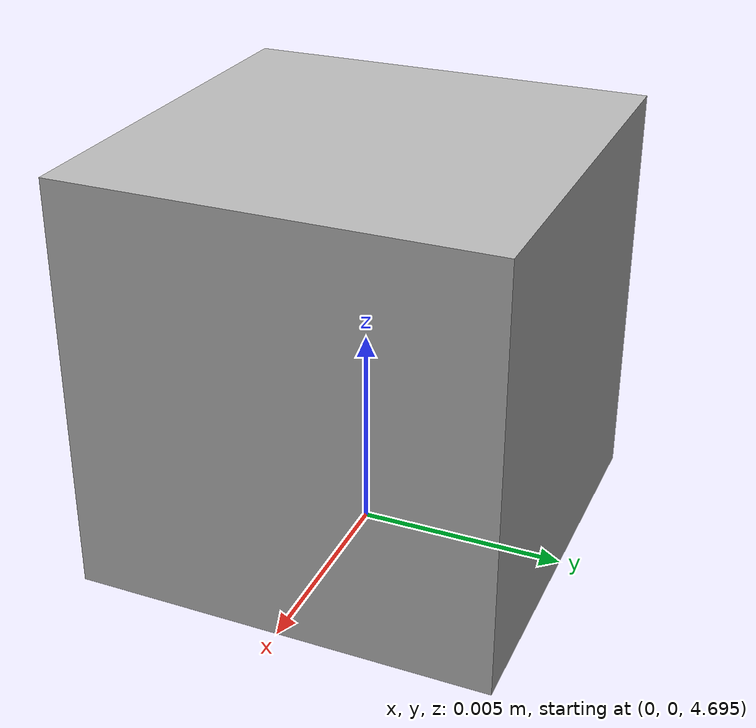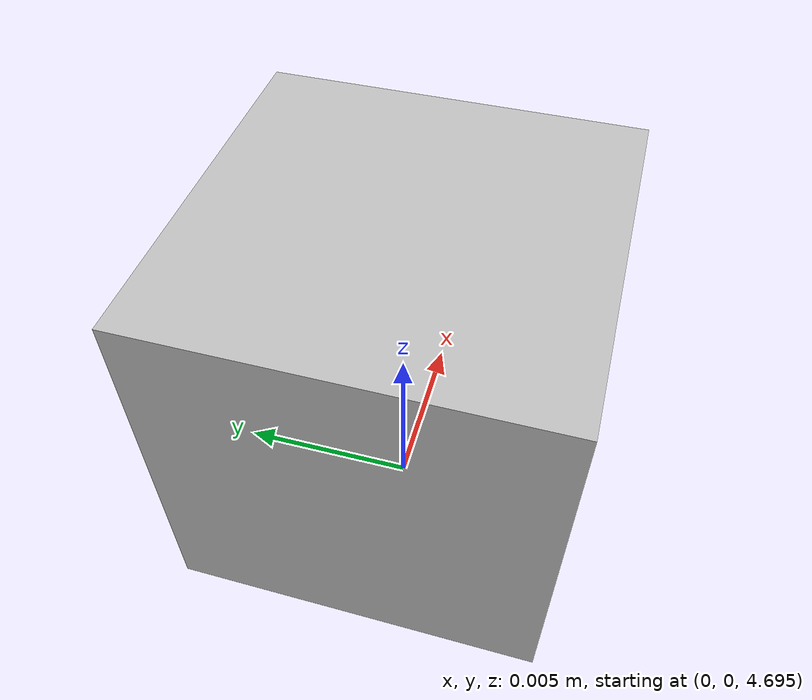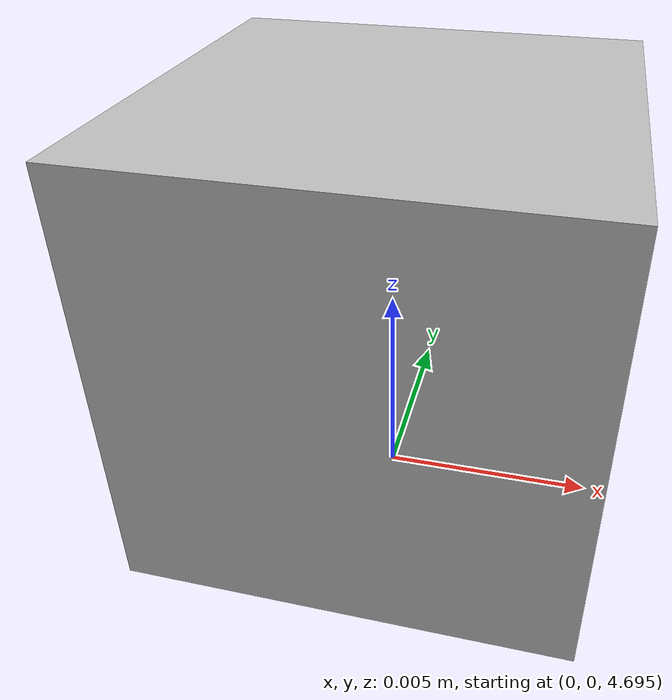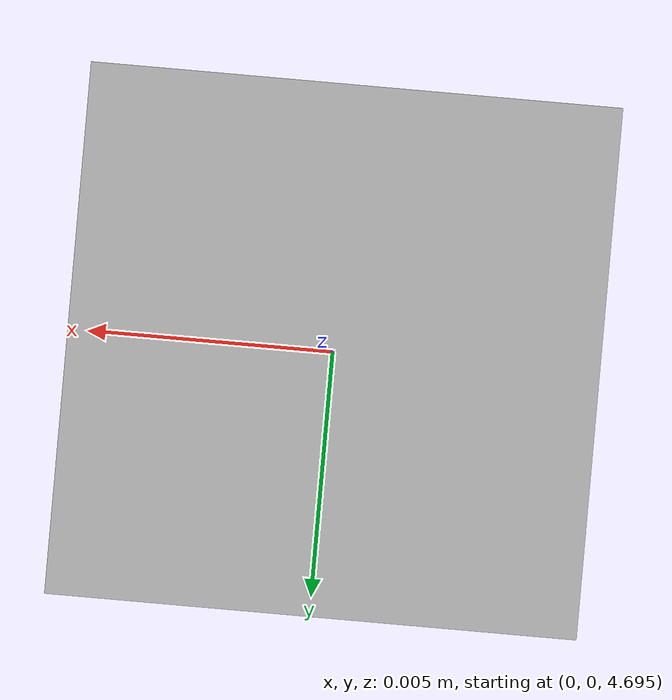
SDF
<?xml version="1.0" ?>
<sdf version="1.5">
	<world name="default">
		<include>
			<uri>model://sun</uri>
		</include>
		<include>
			<uri>model://ground_plane</uri>
		</include>
		<include>
			<uri>model://my1stmodel</uri>
			<pose>0 0 0.1 0 0 0</pose>
			<static>true</static>
		</include>
		<!-- camera -->
		<model name="camera">
			<pose>0 0 4.7 0 1.57 1.57</pose>  <!-- camera placed at a heigth of 15 feet-->
			<static>1</static>
			<link name='camera_link'>

				<inertial>
					<mass>0.1</mass>
					<inertia>
						<ixx>1</ixx>
						<ixy>0</ixy>
						<ixz>0</ixz>
						<iyy>1</iyy>
						<iyz>0</iyz>
						<izz>1</izz>
					</inertia>
				</inertial>
				<visual name='visual'>
					<geometry>
						<box>
							<size>0.01 0.01 0.01</size>
						</box>
					</geometry>
				</visual>
				<sensor type='camera' name='camera'>
					<camera name='overhead_cam'>
						<horizontal_fov>1.0</horizontal_fov>
						<image>
							<width>1280</width>
							<height>1280</height>
						</image>
						<clip>
							<near>0.1</near>
							<far>5.0</far>
						</clip>

					</camera>

					<plugin name='camera_control' filename='libgazebo_ros_camera.so'>
						<alwaysOn>true</alwaysOn>
						<updateRate>0</updateRate>
						<cameraName>gazebo/overhead_cam</cameraName>
						<imageTopicName>image</imageTopicName>
						<cameraInfoTopicName>camera_info</cameraInfoTopicName>
						<frameName>overhead_cam_frame</frameName>
					</plugin>
					<always_on>1</always_on>
					<update_rate>30</update_rate>
					<visualize>0</visualize>

				</sensor>

				<gravity>1</gravity>
			</link>
			<!-- camera link complete -->
		</model>

	</world>

</sdf>

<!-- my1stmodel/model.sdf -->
<sdf version="1.5">
    <model name="my1stmodel">
        <static>false</static>
        <link name="link">
            <collision name="collision">
                <geometry>
                    <plane>
                        <normal>0 0 1</normal>
                        <size>10 10</size>
                    </plane>
                </geometry>
                <surface>
                    <friction>
                        <ode>
                          <mu>100</mu>
                          <mu2>50</mu2>
                        </ode>
                    </friction>
                </surface>
            </collision>

            <visual name="visual">
                <cast_shadows>false</cast_shadows>
                <geometry>
                    <plane>
                        <normal>0 0 1</normal>
                        <size>5 5</size>
                        <pose>0 0 0.0001 0 0 0</pose>
                    </plane>
                </geometry>
                <material>
                    <script>
                        <uri>model://my1stmodel/scripts</uri>
                        <uri>model://my1stmodel/textures</uri>
                        <name>box/Diffuse</name>
                    </script>
                </material>
            </visual>
        </link>
    </model>
</sdf>
